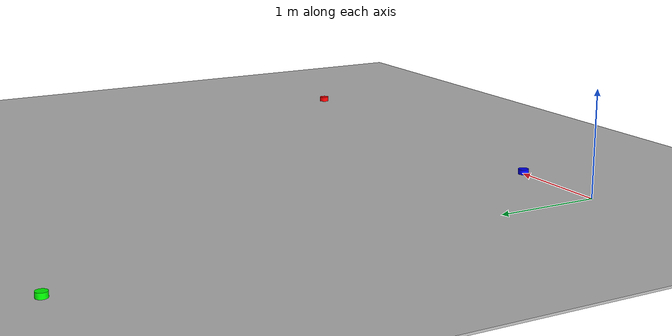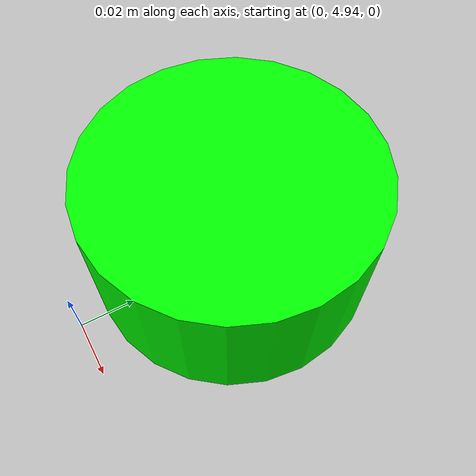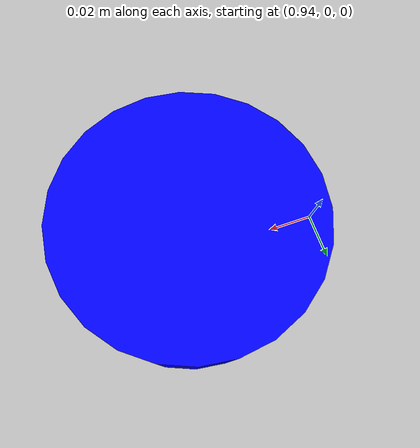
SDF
<?xml version="1.0" ?>
<sdf version="1.5">
  <world name="default">
    <!-- A global light source -->
    <include>
      <uri>model://sun</uri>
    </include>
    <include>
      <uri>model://parquet_plane</uri>
      <pose>0 0 -0.01 0 0 0</pose>
    </include>

    <scene>
      <ambient>0.8 0.8 0.8 1</ambient>
      <background>0.8 0.9 1 1</background>
      <shadows>false</shadows>
      <grid>false</grid>
      <origin_visual>false</origin_visual>
    </scene>

    <physics name='default_physics' default='0' type='ode'>
      <gravity>0 0 -9.8066</gravity>
      <ode>
        <solver>
          <type>quick</type>
          <iters>10</iters>
          <sor>1.3</sor>
          <use_dynamic_moi_rescaling>0</use_dynamic_moi_rescaling>
        </solver>
        <constraints>
          <cfm>0</cfm>
          <erp>0.2</erp>
          <contact_max_correcting_vel>100</contact_max_correcting_vel>
          <contact_surface_layer>0.001</contact_surface_layer>
        </constraints>
      </ode>
      <max_step_size>0.004</max_step_size>
      <real_time_factor>1</real_time_factor>
      <real_time_update_rate>250</real_time_update_rate>
      <magnetic_field>6.0e-6 2.3e-5 -4.2e-5</magnetic_field>
    </physics>

    <model name="uwb_anchor1">
      <pose>1 0 0 0 0 0</pose>
      <static>true</static>
      <link name="link">
        <visual name="visual">
          <geometry>
            <cylinder>
              <radius>0.05</radius>
              <length>0.1</length>
            </cylinder>
          </geometry>
          <material>
            <ambient>0 0 1 1</ambient>
            <diffuse>0 0 1 1</diffuse>
          </material>
        </visual>
      </link>
      <plugin name="anchor1_plugin" filename="libgazebo_ros_uwb_anchor.so">
        <ros>
          <namespace>/uwb</namespace>
        </ros>
        <anchor_id>1</anchor_id>
      </plugin>
    </model>

    <!-- UWB Anchor 2 -->
    <model name="uwb_anchor2">
      <pose>0 5 0 0 0 0</pose>
      <static>true</static>
      <link name="link">
        <visual name="visual">
          <geometry>
            <cylinder>
              <radius>0.05</radius>
              <length>0.1</length>
            </cylinder>
          </geometry>
          <material>
            <ambient>0 1 0 1</ambient>
            <diffuse>0 1 0 1</diffuse>
          </material>
        </visual>
      </link>
      <plugin name="anchor2_plugin" filename="libgazebo_ros_uwb_anchor.so">
        <ros>
          <namespace>/uwb</namespace>
        </ros>
        <anchor_id>2</anchor_id>
      </plugin>
    </model>

    <!-- UWB Anchor 3 -->
    <model name="uwb_anchor3">
      <pose>5 0 0 0 0 0</pose>
      <static>true</static>
      <link name="link">
        <visual name="visual">
          <geometry>
            <cylinder>
              <radius>0.05</radius>
              <length>0.1</length>
            </cylinder>
          </geometry>
          <material>
            <ambient>1 0 0 1</ambient>
            <diffuse>1 0 0 1</diffuse>
          </material>
        </visual>
      </link>
      <plugin name="anchor3_plugin" filename="libgazebo_ros_uwb_anchor.so">
        <ros>
          <namespace>/uwb</namespace>
        </ros>
        <anchor_id>3</anchor_id>
      </plugin>
    </model>

  </world>
</sdf>

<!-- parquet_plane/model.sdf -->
<sdf version="1.5">
  <model name="parquet_plane">
    <static>true</static>
    <link name="link">
      <collision name="collision">
        <geometry>
          <box>
            <size>200 200 .02</size>
          </box>
        </geometry>
      </collision>
      <visual name="visual">
        <cast_shadows>false</cast_shadows>
        <geometry>
          <box>
            <size>200 200 .02</size>
          </box>
        </geometry>
        <material>
          <script>
            <uri>model://parquet_plane/materials/scripts</uri>
            <uri>model://parquet_plane/materials/textures</uri>
            <name>parquet</name>
          </script>
        </material>
      </visual>
    </link>
  </model>
</sdf>
